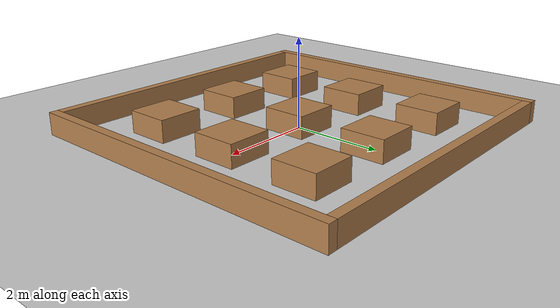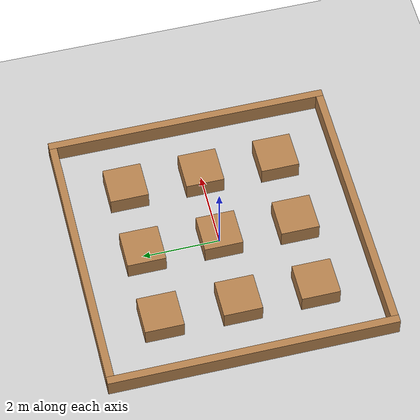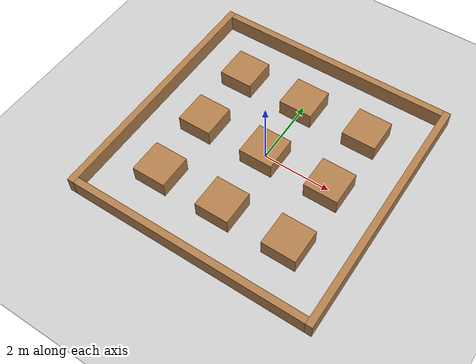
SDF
<sdf version='1.4'>
  <world name='default'>
    <!-- A global light source -->
    <include>
      <uri>model://sun</uri>
    </include>

    <!-- A ground plane -->
    <include>
      <uri>model://ground_plane</uri>
    </include>

    <physics type="ode">
      <real_time_update_rate>200.0</real_time_update_rate>
      <max_step_size>0.005</max_step_size>
      <real_time_factor>1</real_time_factor>
      <ode>
        <solver>
          <type>quick</type>
          <iters>100</iters>
          <precon_iters>0</precon_iters>
          <sor>1</sor>
          <use_dynamic_moi_rescaling>1</use_dynamic_moi_rescaling>
        </solver>
      </ode>
    </physics>

    <!-- A turtlebot symbol -->
    <include>
      <uri>model://map_4x4</uri>
    </include>

    <scene>
      <ambient>0.4 0.4 0.4 1</ambient>
      <background>0.7 0.7 0.7 1</background>
      <shadows>true</shadows>
    </scene>

    <gui fullscreen='0'>
      <camera name='user_camera'>
        <pose>0.0 0.0 17.0 0 1.5708 -1.5708</pose>
        <view_controller>orbit</view_controller>
      </camera>
    </gui>
  </world>
</sdf>

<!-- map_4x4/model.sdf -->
<sdf version='1.5'>
  <model name='clobot_test_map'>
    <static>1</static>

    <link name='Wall_EAST'>
      <collision name='Wall_EAST_Collision'>
        <pose>3.6 0 0.25 0 0 0</pose>
        <geometry>
          <box>
            <size>0.2 7.4 0.5</size>
          </box>
        </geometry>
        <surface>
          <friction>
            <ode>
              <mu>1</mu>
              <mu2>1</mu2>
              <fdir1>0 0 0</fdir1>
              <slip1>0</slip1>
              <slip2>0</slip2>
            </ode>
            <torsional>
              <coefficient>1</coefficient>
              <patch_radius>0</patch_radius>
              <surface_radius>0</surface_radius>
              <use_patch_radius>1</use_patch_radius>
              <ode>
                <slip>0</slip>
              </ode>
            </torsional>
          </friction>
          <bounce>
            <restitution_coefficient>0</restitution_coefficient>
            <threshold>1e+06</threshold>
          </bounce>
          <contact>
            <collide_without_contact>0</collide_without_contact>
            <collide_without_contact_bitmask>1</collide_without_contact_bitmask>
            <collide_bitmask>1</collide_bitmask>
            <ode>
              <soft_cfm>0</soft_cfm>
              <soft_erp>0.2</soft_erp>
              <kp>1e+13</kp>
              <kd>1</kd>
              <max_vel>0.01</max_vel>
              <min_depth>0</min_depth>
            </ode>
            <bullet>
              <split_impulse>1</split_impulse>
              <split_impulse_penetration_threshold>-0.01</split_impulse_penetration_threshold>
              <soft_cfm>0</soft_cfm>
              <soft_erp>0.2</soft_erp>
              <kp>1e+13</kp>
              <kd>1</kd>
            </bullet>
          </contact>
        </surface>
      </collision>

      <visual name='Wall_EAST_Visual'>
        <pose>3.6 0 0.25 0 0 0</pose>
        <geometry>
          <box>
            <size>0.2 7.4 0.5</size>
          </box>
        </geometry>
        <material>
          <script>
            <name>Gazebo/WoodFloor</name>
          </script>
        </material>
      </visual>
    </link>

    <link name='Wall_WEST'>
      <collision name='Wall_WEST_Collision'>
        <pose>-3.6 0 0.25 0 0 0</pose>
        <geometry>
          <box>
            <size>0.2 7.4 0.5</size>
          </box>
        </geometry>
        <surface>
          <friction>
            <ode>
              <mu>1</mu>
              <mu2>1</mu2>
              <fdir1>0 0 0</fdir1>
              <slip1>0</slip1>
              <slip2>0</slip2>
            </ode>
            <torsional>
              <coefficient>1</coefficient>
              <patch_radius>0</patch_radius>
              <surface_radius>0</surface_radius>
              <use_patch_radius>1</use_patch_radius>
              <ode>
                <slip>0</slip>
              </ode>
            </torsional>
          </friction>
          <bounce>
            <restitution_coefficient>0</restitution_coefficient>
            <threshold>1e+06</threshold>
          </bounce>
          <contact>
            <collide_without_contact>0</collide_without_contact>
            <collide_without_contact_bitmask>1</collide_without_contact_bitmask>
            <collide_bitmask>1</collide_bitmask>
            <ode>
              <soft_cfm>0</soft_cfm>
              <soft_erp>0.2</soft_erp>
              <kp>1e+13</kp>
              <kd>1</kd>
              <max_vel>0.01</max_vel>
              <min_depth>0</min_depth>
            </ode>
            <bullet>
              <split_impulse>1</split_impulse>
              <split_impulse_penetration_threshold>-0.01</split_impulse_penetration_threshold>
              <soft_cfm>0</soft_cfm>
              <soft_erp>0.2</soft_erp>
              <kp>1e+13</kp>
              <kd>1</kd>
            </bullet>
          </contact>
        </surface>
      </collision>

      <visual name='Wall_SOUTH_Visual'>
        <pose>-3.6 0 0.25 0 0 0</pose>
        <geometry>
          <box>
            <size>0.2 7.4 0.5</size>
          </box>
        </geometry>
        <material>
          <script>
            <name>Gazebo/WoodFloor</name>
          </script>
        </material>
      </visual>
    </link>

    <link name='Wall_SOUTH'>
      <collision name='Wall_SOUTH_Collision'>
        <pose>0 -3.6 0.25 0 0 0</pose>
        <geometry>
          <box>
            <size>7 0.2 0.5</size>
          </box>
        </geometry>
        <surface>
          <friction>
            <ode>
              <mu>1</mu>
              <mu2>1</mu2>
              <fdir1>0 0 0</fdir1>
              <slip1>0</slip1>
              <slip2>0</slip2>
            </ode>
            <torsional>
              <coefficient>1</coefficient>
              <patch_radius>0</patch_radius>
              <surface_radius>0</surface_radius>
              <use_patch_radius>1</use_patch_radius>
              <ode>
                <slip>0</slip>
              </ode>
            </torsional>
          </friction>
          <bounce>
            <restitution_coefficient>0</restitution_coefficient>
            <threshold>1e+06</threshold>
          </bounce>
          <contact>
            <collide_without_contact>0</collide_without_contact>
            <collide_without_contact_bitmask>1</collide_without_contact_bitmask>
            <collide_bitmask>1</collide_bitmask>
            <ode>
              <soft_cfm>0</soft_cfm>
              <soft_erp>0.2</soft_erp>
              <kp>1e+13</kp>
              <kd>1</kd>
              <max_vel>0.01</max_vel>
              <min_depth>0</min_depth>
            </ode>
            <bullet>
              <split_impulse>1</split_impulse>
              <split_impulse_penetration_threshold>-0.01</split_impulse_penetration_threshold>
              <soft_cfm>0</soft_cfm>
              <soft_erp>0.2</soft_erp>
              <kp>1e+13</kp>
              <kd>1</kd>
            </bullet>
          </contact>
        </surface>
      </collision>

      <visual name='Wall_SOUTH_Visual'>
        <pose>0 -3.6 0.25 0 0 0</pose>
        <geometry>
          <box>
            <size>7 0.2 0.5</size>
          </box>
        </geometry>
        <material>
          <script>
            <name>Gazebo/WoodFloor</name>
          </script>
        </material>
      </visual>
    </link>

    <link name='Wall_NORTH'>
      <collision name='Wall_NORTH_Collision'>
        <pose>0 3.6 0.25 0 0 0</pose>
        <geometry>
          <box>
            <size>7 0.2 0.5</size>
          </box>
        </geometry>
        <surface>
          <friction>
            <ode>
              <mu>1</mu>
              <mu2>1</mu2>
              <fdir1>0 0 0</fdir1>
              <slip1>0</slip1>
              <slip2>0</slip2>
            </ode>
            <torsional>
              <coefficient>1</coefficient>
              <patch_radius>0</patch_radius>
              <surface_radius>0</surface_radius>
              <use_patch_radius>1</use_patch_radius>
              <ode>
                <slip>0</slip>
              </ode>
            </torsional>
          </friction>
          <bounce>
            <restitution_coefficient>0</restitution_coefficient>
            <threshold>1e+06</threshold>
          </bounce>
          <contact>
            <collide_without_contact>0</collide_without_contact>
            <collide_without_contact_bitmask>1</collide_without_contact_bitmask>
            <collide_bitmask>1</collide_bitmask>
            <ode>
              <soft_cfm>0</soft_cfm>
              <soft_erp>0.2</soft_erp>
              <kp>1e+13</kp>
              <kd>1</kd>
              <max_vel>0.01</max_vel>
              <min_depth>0</min_depth>
            </ode>
            <bullet>
              <split_impulse>1</split_impulse>
              <split_impulse_penetration_threshold>-0.01</split_impulse_penetration_threshold>
              <soft_cfm>0</soft_cfm>
              <soft_erp>0.2</soft_erp>
              <kp>1e+13</kp>
              <kd>1</kd>
            </bullet>
          </contact>
        </surface>
      </collision>

      <visual name='Wall_NORTH_Visual'>
        <pose>0 3.6 0.25 0 0 0</pose>
        <geometry>
          <box>
            <size>7 0.2 0.5</size>
          </box>
        </geometry>
        <material>
          <script>
            <name>Gazebo/WoodFloor</name>
          </script>
        </material>
      </visual>
    </link>

    <link name='Box1'>
      <collision name='Box1_Collision'>
        <pose>-2 2 0.25 0 0 0</pose>
        <geometry>
          <box>
            <size>1 1 0.5</size>
          </box>
        </geometry>
        <surface>
          <friction>
            <ode>
              <mu>1</mu>
              <mu2>1</mu2>
              <fdir1>0 0 0</fdir1>
              <slip1>0</slip1>
              <slip2>0</slip2>
            </ode>
            <torsional>
              <coefficient>1</coefficient>
              <patch_radius>0</patch_radius>
              <surface_radius>0</surface_radius>
              <use_patch_radius>1</use_patch_radius>
              <ode>
                <slip>0</slip>
              </ode>
            </torsional>
          </friction>
          <bounce>
            <restitution_coefficient>0</restitution_coefficient>
            <threshold>1e+06</threshold>
          </bounce>
          <contact>
            <collide_without_contact>0</collide_without_contact>
            <collide_without_contact_bitmask>1</collide_without_contact_bitmask>
            <collide_bitmask>1</collide_bitmask>
            <ode>
              <soft_cfm>0</soft_cfm>
              <soft_erp>0.2</soft_erp>
              <kp>1e+13</kp>
              <kd>1</kd>
              <max_vel>0.01</max_vel>
              <min_depth>0</min_depth>
            </ode>
            <bullet>
              <split_impulse>1</split_impulse>
              <split_impulse_penetration_threshold>-0.01</split_impulse_penetration_threshold>
              <soft_cfm>0</soft_cfm>
              <soft_erp>0.2</soft_erp>
              <kp>1e+13</kp>
              <kd>1</kd>
            </bullet>
          </contact>
        </surface>
      </collision>

      <visual name='Box1_Visual'>
        <pose>-2 2 0.25 0 0 0</pose>
        <geometry>
          <box>
            <size>1 1 0.5</size>
          </box>
        </geometry>
        <material>
          <script>
            <name>Gazebo/WoodFloor</name>
          </script>
        </material>
      </visual>
    </link>

    <link name='Box2'>
      <collision name='Box2_Collision'>
        <pose>0 2 0.25 0 0 0</pose>
        <geometry>
          <box>
            <size>1 1 0.5</size>
          </box>
        </geometry>
        <surface>
          <friction>
            <ode>
              <mu>1</mu>
              <mu2>1</mu2>
              <fdir1>0 0 0</fdir1>
              <slip1>0</slip1>
              <slip2>0</slip2>
            </ode>
            <torsional>
              <coefficient>1</coefficient>
              <patch_radius>0</patch_radius>
              <surface_radius>0</surface_radius>
              <use_patch_radius>1</use_patch_radius>
              <ode>
                <slip>0</slip>
              </ode>
            </torsional>
          </friction>
          <bounce>
            <restitution_coefficient>0</restitution_coefficient>
            <threshold>1e+06</threshold>
          </bounce>
          <contact>
            <collide_without_contact>0</collide_without_contact>
            <collide_without_contact_bitmask>1</collide_without_contact_bitmask>
            <collide_bitmask>1</collide_bitmask>
            <ode>
              <soft_cfm>0</soft_cfm>
              <soft_erp>0.2</soft_erp>
              <kp>1e+13</kp>
              <kd>1</kd>
              <max_vel>0.01</max_vel>
              <min_depth>0</min_depth>
            </ode>
            <bullet>
              <split_impulse>1</split_impulse>
              <split_impulse_penetration_threshold>-0.01</split_impulse_penetration_threshold>
              <soft_cfm>0</soft_cfm>
              <soft_erp>0.2</soft_erp>
              <kp>1e+13</kp>
              <kd>1</kd>
            </bullet>
          </contact>
        </surface>
      </collision>

      <visual name='Box2_Visual'>
        <pose>0 2 0.25 0 0 0</pose>
        <geometry>
          <box>
            <size>1 1 0.5</size>
          </box>
        </geometry>
        <material>
          <script>
            <name>Gazebo/WoodFloor</name>
          </script>
        </material>
      </visual>
    </link>

    <link name='Box3'>
      <collision name='Box3_Collision'>
        <pose>2 2 0.25 0 0 0</pose>
        <geometry>
          <box>
            <size>1 1 0.5</size>
          </box>
        </geometry>
        <surface>
          <friction>
            <ode>
              <mu>1</mu>
              <mu2>1</mu2>
              <fdir1>0 0 0</fdir1>
              <slip1>0</slip1>
              <slip2>0</slip2>
            </ode>
            <torsional>
              <coefficient>1</coefficient>
              <patch_radius>0</patch_radius>
              <surface_radius>0</surface_radius>
              <use_patch_radius>1</use_patch_radius>
              <ode>
                <slip>0</slip>
              </ode>
            </torsional>
          </friction>
          <bounce>
            <restitution_coefficient>0</restitution_coefficient>
            <threshold>1e+06</threshold>
          </bounce>
          <contact>
            <collide_without_contact>0</collide_without_contact>
            <collide_without_contact_bitmask>1</collide_without_contact_bitmask>
            <collide_bitmask>1</collide_bitmask>
            <ode>
              <soft_cfm>0</soft_cfm>
              <soft_erp>0.2</soft_erp>
              <kp>1e+13</kp>
              <kd>1</kd>
              <max_vel>0.01</max_vel>
              <min_depth>0</min_depth>
            </ode>
            <bullet>
              <split_impulse>1</split_impulse>
              <split_impulse_penetration_threshold>-0.01</split_impulse_penetration_threshold>
              <soft_cfm>0</soft_cfm>
              <soft_erp>0.2</soft_erp>
              <kp>1e+13</kp>
              <kd>1</kd>
            </bullet>
          </contact>
        </surface>
      </collision>

      <visual name='Box3_Visual'>
        <pose>2 2 0.25 0 0 0</pose>
        <geometry>
          <box>
            <size>1 1 0.5</size>
          </box>
        </geometry>
        <material>
          <script>
            <name>Gazebo/WoodFloor</name>
          </script>
        </material>
      </visual>
    </link>

    <link name='Box4'>
      <collision name='Box4_Collision'>
        <pose>-2 0 0.25 0 0 0</pose>
        <geometry>
          <box>
            <size>1 1 0.5</size>
          </box>
        </geometry>
        <surface>
          <friction>
            <ode>
              <mu>1</mu>
              <mu2>1</mu2>
              <fdir1>0 0 0</fdir1>
              <slip1>0</slip1>
              <slip2>0</slip2>
            </ode>
            <torsional>
              <coefficient>1</coefficient>
              <patch_radius>0</patch_radius>
              <surface_radius>0</surface_radius>
              <use_patch_radius>1</use_patch_radius>
              <ode>
                <slip>0</slip>
              </ode>
            </torsional>
          </friction>
          <bounce>
            <restitution_coefficient>0</restitution_coefficient>
            <threshold>1e+06</threshold>
          </bounce>
          <contact>
            <collide_without_contact>0</collide_without_contact>
            <collide_without_contact_bitmask>1</collide_without_contact_bitmask>
            <collide_bitmask>1</collide_bitmask>
            <ode>
              <soft_cfm>0</soft_cfm>
              <soft_erp>0.2</soft_erp>
              <kp>1e+13</kp>
              <kd>1</kd>
              <max_vel>0.01</max_vel>
              <min_depth>0</min_depth>
            </ode>
            <bullet>
              <split_impulse>1</split_impulse>
              <split_impulse_penetration_threshold>-0.01</split_impulse_penetration_threshold>
              <soft_cfm>0</soft_cfm>
              <soft_erp>0.2</soft_erp>
              <kp>1e+13</kp>
              <kd>1</kd>
            </bullet>
          </contact>
        </surface>
      </collision>

      <visual name='Box4_Visual'>
        <pose>-2 0 0.25 0 0 0</pose>
        <geometry>
          <box>
            <size>1 1 0.5</size>
          </box>
        </geometry>
        <material>
          <script>
            <name>Gazebo/WoodFloor</name>
          </script>
        </material>
      </visual>
    </link>

    <link name='Box5'>
      <collision name='Box5_Collision'>
        <pose>0 0 0.25 0 0 0</pose>
        <geometry>
          <box>
            <size>1 1 0.5</size>
          </box>
        </geometry>
        <surface>
          <friction>
            <ode>
              <mu>1</mu>
              <mu2>1</mu2>
              <fdir1>0 0 0</fdir1>
              <slip1>0</slip1>
              <slip2>0</slip2>
            </ode>
            <torsional>
              <coefficient>1</coefficient>
              <patch_radius>0</patch_radius>
              <surface_radius>0</surface_radius>
              <use_patch_radius>1</use_patch_radius>
              <ode>
                <slip>0</slip>
              </ode>
            </torsional>
          </friction>
          <bounce>
            <restitution_coefficient>0</restitution_coefficient>
            <threshold>1e+06</threshold>
          </bounce>
          <contact>
            <collide_without_contact>0</collide_without_contact>
            <collide_without_contact_bitmask>1</collide_without_contact_bitmask>
            <collide_bitmask>1</collide_bitmask>
            <ode>
              <soft_cfm>0</soft_cfm>
              <soft_erp>0.2</soft_erp>
              <kp>1e+13</kp>
              <kd>1</kd>
              <max_vel>0.01</max_vel>
              <min_depth>0</min_depth>
            </ode>
            <bullet>
              <split_impulse>1</split_impulse>
              <split_impulse_penetration_threshold>-0.01</split_impulse_penetration_threshold>
              <soft_cfm>0</soft_cfm>
              <soft_erp>0.2</soft_erp>
              <kp>1e+13</kp>
              <kd>1</kd>
            </bullet>
          </contact>
        </surface>
      </collision>

      <visual name='Box5_Visual'>
        <pose>0 0 0.25 0 0 0</pose>
        <geometry>
          <box>
            <size>1 1 0.5</size>
          </box>
        </geometry>
        <material>
          <script>
            <name>Gazebo/WoodFloor</name>
          </script>
        </material>
      </visual>
    </link>

    <link name='Box6'>
      <collision name='Box6_Collision'>
        <pose>2 0 0.25 0 0 0</pose>
        <geometry>
          <box>
            <size>1 1 0.5</size>
          </box>
        </geometry>
        <surface>
          <friction>
            <ode>
              <mu>1</mu>
              <mu2>1</mu2>
              <fdir1>0 0 0</fdir1>
              <slip1>0</slip1>
              <slip2>0</slip2>
            </ode>
            <torsional>
              <coefficient>1</coefficient>
              <patch_radius>0</patch_radius>
              <surface_radius>0</surface_radius>
              <use_patch_radius>1</use_patch_radius>
              <ode>
                <slip>0</slip>
              </ode>
            </torsional>
          </friction>
          <bounce>
            <restitution_coefficient>0</restitution_coefficient>
            <threshold>1e+06</threshold>
          </bounce>
          <contact>
            <collide_without_contact>0</collide_without_contact>
            <collide_without_contact_bitmask>1</collide_without_contact_bitmask>
            <collide_bitmask>1</collide_bitmask>
            <ode>
              <soft_cfm>0</soft_cfm>
              <soft_erp>0.2</soft_erp>
              <kp>1e+13</kp>
              <kd>1</kd>
              <max_vel>0.01</max_vel>
              <min_depth>0</min_depth>
            </ode>
            <bullet>
              <split_impulse>1</split_impulse>
              <split_impulse_penetration_threshold>-0.01</split_impulse_penetration_threshold>
              <soft_cfm>0</soft_cfm>
              <soft_erp>0.2</soft_erp>
              <kp>1e+13</kp>
              <kd>1</kd>
            </bullet>
          </contact>
        </surface>
      </collision>

      <visual name='Box6_Visual'>
        <pose>2 0 0.25 0 0 0</pose>
        <geometry>
          <box>
            <size>1 1 0.5</size>
          </box>
        </geometry>
        <material>
          <script>
            <name>Gazebo/WoodFloor</name>
          </script>
        </material>
      </visual>
    </link>

    <link name='Box7'>
      <collision name='Box7_Collision'>
        <pose>-2 -2 0.25 0 0 0</pose>
        <geometry>
          <box>
            <size>1 1 0.5</size>
          </box>
        </geometry>
        <surface>
          <friction>
            <ode>
              <mu>1</mu>
              <mu2>1</mu2>
              <fdir1>0 0 0</fdir1>
              <slip1>0</slip1>
              <slip2>0</slip2>
            </ode>
            <torsional>
              <coefficient>1</coefficient>
              <patch_radius>0</patch_radius>
              <surface_radius>0</surface_radius>
              <use_patch_radius>1</use_patch_radius>
              <ode>
                <slip>0</slip>
              </ode>
            </torsional>
          </friction>
          <bounce>
            <restitution_coefficient>0</restitution_coefficient>
            <threshold>1e+06</threshold>
          </bounce>
          <contact>
            <collide_without_contact>0</collide_without_contact>
            <collide_without_contact_bitmask>1</collide_without_contact_bitmask>
            <collide_bitmask>1</collide_bitmask>
            <ode>
              <soft_cfm>0</soft_cfm>
              <soft_erp>0.2</soft_erp>
              <kp>1e+13</kp>
              <kd>1</kd>
              <max_vel>0.01</max_vel>
              <min_depth>0</min_depth>
            </ode>
            <bullet>
              <split_impulse>1</split_impulse>
              <split_impulse_penetration_threshold>-0.01</split_impulse_penetration_threshold>
              <soft_cfm>0</soft_cfm>
              <soft_erp>0.2</soft_erp>
              <kp>1e+13</kp>
              <kd>1</kd>
            </bullet>
          </contact>
        </surface>
      </collision>

      <visual name='Box7_Visual'>
        <pose>-2 -2 0.25 0 0 0</pose>
        <geometry>
          <box>
            <size>1 1 0.5</size>
          </box>
        </geometry>
        <material>
          <script>
            <name>Gazebo/WoodFloor</name>
          </script>
        </material>
      </visual>
    </link>

    <link name='Box8'>
      <collision name='Box8_Collision'>
        <pose>0 -2 0.25 0 0 0</pose>
        <geometry>
          <box>
            <size>1 1 0.5</size>
          </box>
        </geometry>
        <surface>
          <friction>
            <ode>
              <mu>1</mu>
              <mu2>1</mu2>
              <fdir1>0 0 0</fdir1>
              <slip1>0</slip1>
              <slip2>0</slip2>
            </ode>
            <torsional>
              <coefficient>1</coefficient>
              <patch_radius>0</patch_radius>
              <surface_radius>0</surface_radius>
              <use_patch_radius>1</use_patch_radius>
              <ode>
                <slip>0</slip>
              </ode>
            </torsional>
          </friction>
          <bounce>
            <restitution_coefficient>0</restitution_coefficient>
            <threshold>1e+06</threshold>
          </bounce>
          <contact>
            <collide_without_contact>0</collide_without_contact>
            <collide_without_contact_bitmask>1</collide_without_contact_bitmask>
            <collide_bitmask>1</collide_bitmask>
            <ode>
              <soft_cfm>0</soft_cfm>
              <soft_erp>0.2</soft_erp>
              <kp>1e+13</kp>
              <kd>1</kd>
              <max_vel>0.01</max_vel>
              <min_depth>0</min_depth>
            </ode>
            <bullet>
              <split_impulse>1</split_impulse>
              <split_impulse_penetration_threshold>-0.01</split_impulse_penetration_threshold>
              <soft_cfm>0</soft_cfm>
              <soft_erp>0.2</soft_erp>
              <kp>1e+13</kp>
              <kd>1</kd>
            </bullet>
          </contact>
        </surface>
      </collision>

      <visual name='Box8_Visual'>
        <pose>0 -2 0.25 0 0 0</pose>
        <geometry>
          <box>
            <size>1 1 0.5</size>
          </box>
        </geometry>
        <material>
          <script>
            <name>Gazebo/WoodFloor</name>
          </script>
        </material>
      </visual>
    </link>

    <link name='Box9'>
      <collision name='Box9_Collision'>
        <pose>2 -2 0.25 0 0 0</pose>
        <geometry>
          <box>
            <size>1 1 0.5</size>
          </box>
        </geometry>
        <surface>
          <friction>
            <ode>
              <mu>1</mu>
              <mu2>1</mu2>
              <fdir1>0 0 0</fdir1>
              <slip1>0</slip1>
              <slip2>0</slip2>
            </ode>
            <torsional>
              <coefficient>1</coefficient>
              <patch_radius>0</patch_radius>
              <surface_radius>0</surface_radius>
              <use_patch_radius>1</use_patch_radius>
              <ode>
                <slip>0</slip>
              </ode>
            </torsional>
          </friction>
          <bounce>
            <restitution_coefficient>0</restitution_coefficient>
            <threshold>1e+06</threshold>
          </bounce>
          <contact>
            <collide_without_contact>0</collide_without_contact>
            <collide_without_contact_bitmask>1</collide_without_contact_bitmask>
            <collide_bitmask>1</collide_bitmask>
            <ode>
              <soft_cfm>0</soft_cfm>
              <soft_erp>0.2</soft_erp>
              <kp>1e+13</kp>
              <kd>1</kd>
              <max_vel>0.01</max_vel>
              <min_depth>0</min_depth>
            </ode>
            <bullet>
              <split_impulse>1</split_impulse>
              <split_impulse_penetration_threshold>-0.01</split_impulse_penetration_threshold>
              <soft_cfm>0</soft_cfm>
              <soft_erp>0.2</soft_erp>
              <kp>1e+13</kp>
              <kd>1</kd>
            </bullet>
          </contact>
        </surface>
      </collision>

      <visual name='Box9_Visual'>
        <pose>2 -2 0.25 0 0 0</pose>
        <geometry>
          <box>
            <size>1 1 0.5</size>
          </box>
        </geometry>
        <material>
          <script>
            <name>Gazebo/WoodFloor</name>
          </script>
        </material>
      </visual>
    </link>
  </model>
</sdf>
